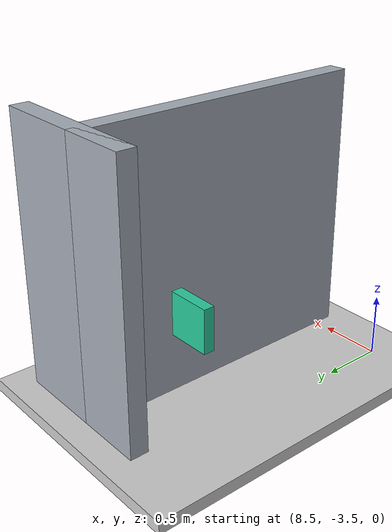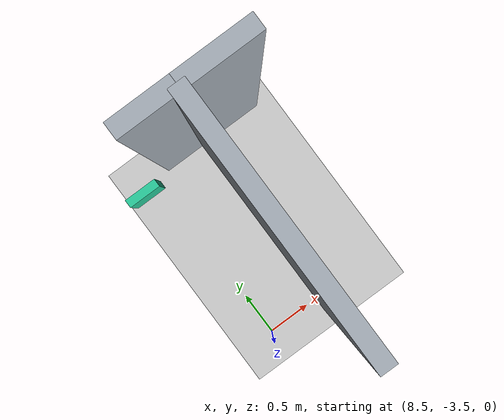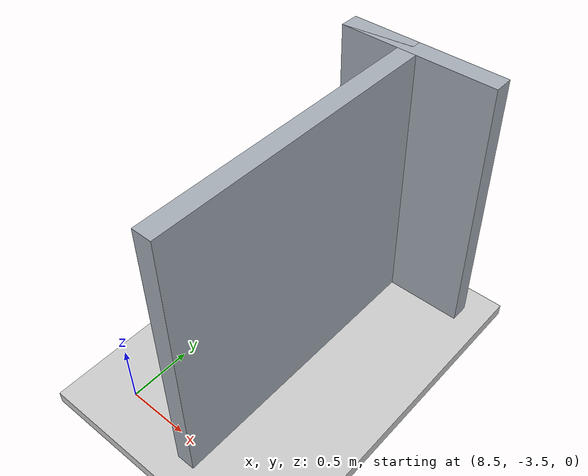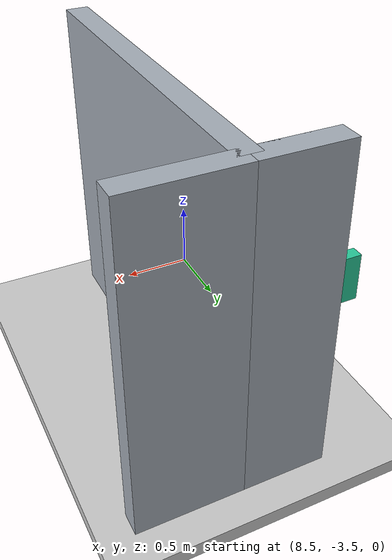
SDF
<sdf version="1.9">
 <world name="default">
  <model name="ground_plane">
   <static>true</static>
   <pose>4.95 0 -0.05 0 0 0</pose>
   <link name="body">
    <collision name="collision"><geometry><box><size>13.9 12 0.1</size></box></geometry></collision>
    <visual name="visual">
     <geometry><box><size>13.9 12 0.1</size></box></geometry>
     <material><ambient>0.8 0.8 0.8 1</ambient><diffuse>0.8 0.8 0.8 1</diffuse></material>
    </visual>
   </link>
  </model>
  <model name="room_-1_2_1">
   <static>true</static>
   <pose>9.200000000000001 -2.45 1.1 0 0 0</pose>
   <link name="body">
    <collision name="collision"><geometry><box><size>0.15 2.4 2.2</size></box></geometry></collision>
    <visual name="visual">
     <geometry><box><size>0.15 2.4 2.2</size></box></geometry>
     <material><ambient>0.65 0.68 0.72 1</ambient><diffuse>0.65 0.68 0.72 1</diffuse></material>
    </visual>
   </link>
  </model>
  <model name="jamb_-1_2_1">
   <static>true</static>
   <pose>8.925 -1.25 1.1 0 0 0</pose>
   <link name="body">
    <collision name="collision"><geometry><box><size>0.55 0.15 2.2</size></box></geometry></collision>
    <visual name="visual">
     <geometry><box><size>0.55 0.15 2.2</size></box></geometry>
     <material><ambient>0.65 0.68 0.72 1</ambient><diffuse>0.65 0.68 0.72 1</diffuse></material>
    </visual>
   </link>
  </model>
  <model name="hall_end_-1">
   <static>true</static>
   <pose>9.275 -1.25 1.1 0 0 0</pose>
   <link name="body">
    <collision name="collision"><geometry><box><size>1.25 0.15 2.2</size></box></geometry></collision>
    <visual name="visual">
     <geometry><box><size>1.25 0.15 2.2</size></box></geometry>
     <material><ambient>0.65 0.68 0.72 1</ambient><diffuse>0.65 0.68 0.72 1</diffuse></material>
    </visual>
   </link>
  </model>
  <model name="r3geo_base_r002_right_2_entrance_sign">
   <static>true</static>
   <pose>8.43 -1.55 1.05 0 0 0</pose>
   <link name="body">
    <visual name="visual">
     <geometry><box><size>0.32 0.08 0.32</size></box></geometry>
     <material><ambient>0.16 0.8 0.61 1</ambient><diffuse>0.16 0.8 0.61 1</diffuse></material>
    </visual>
   </link>
  </model>
 </world>
</sdf>
